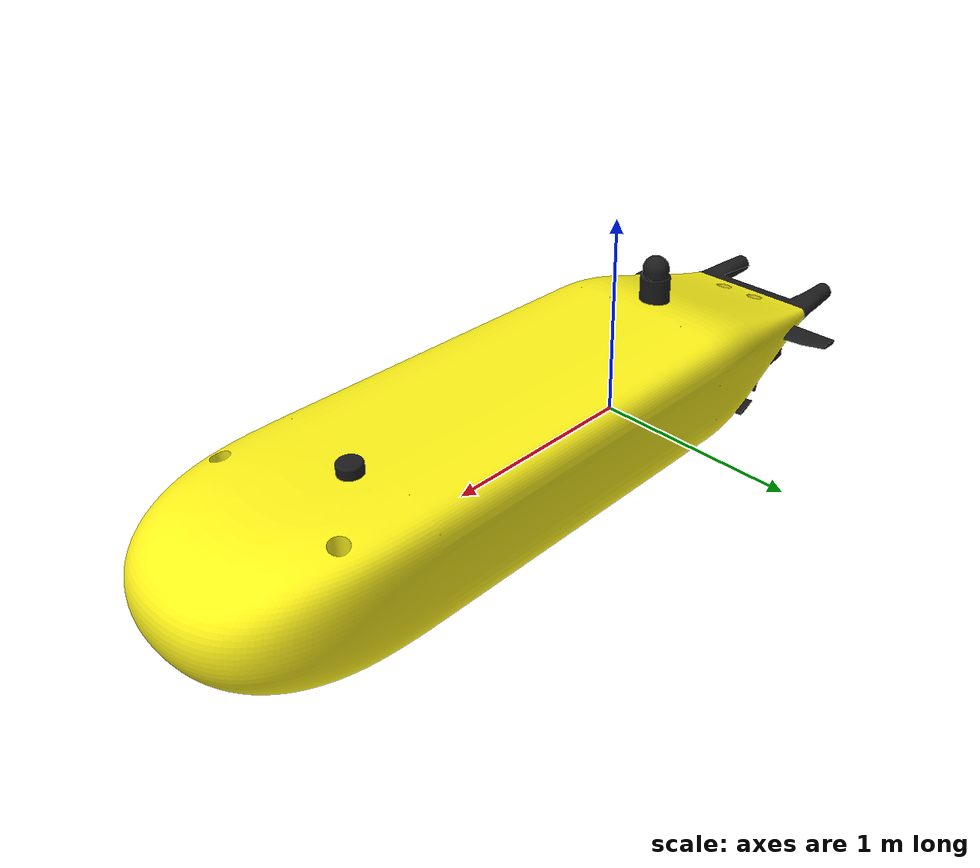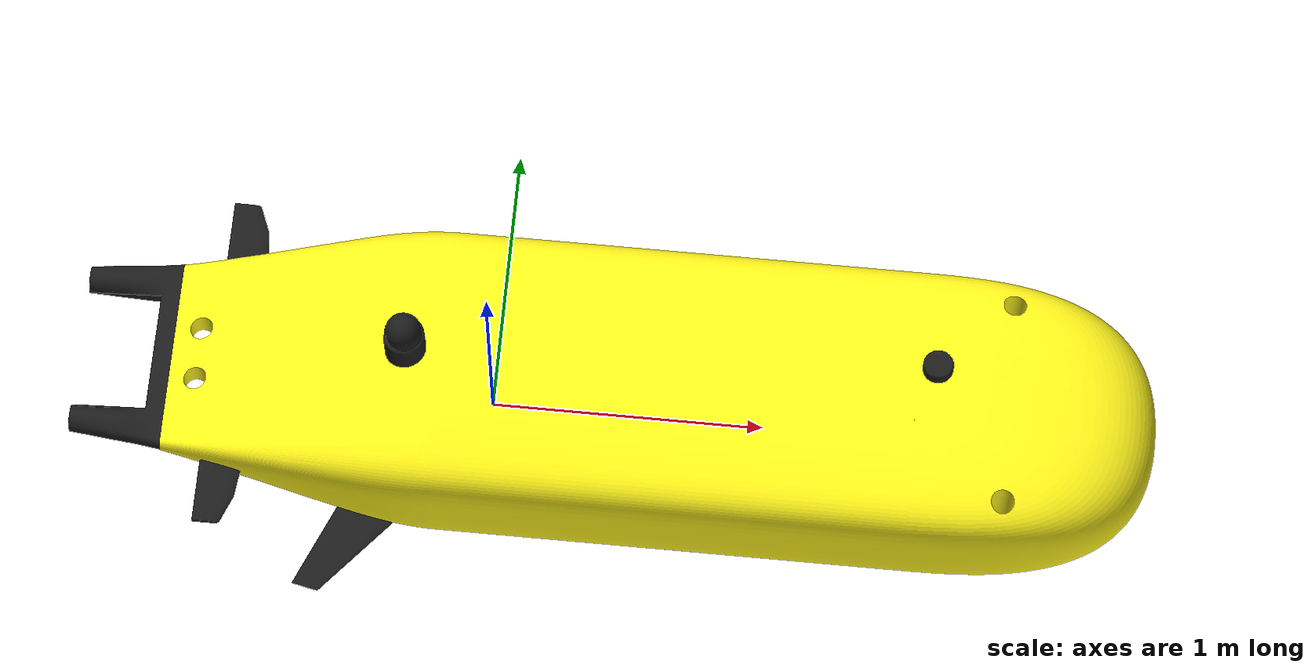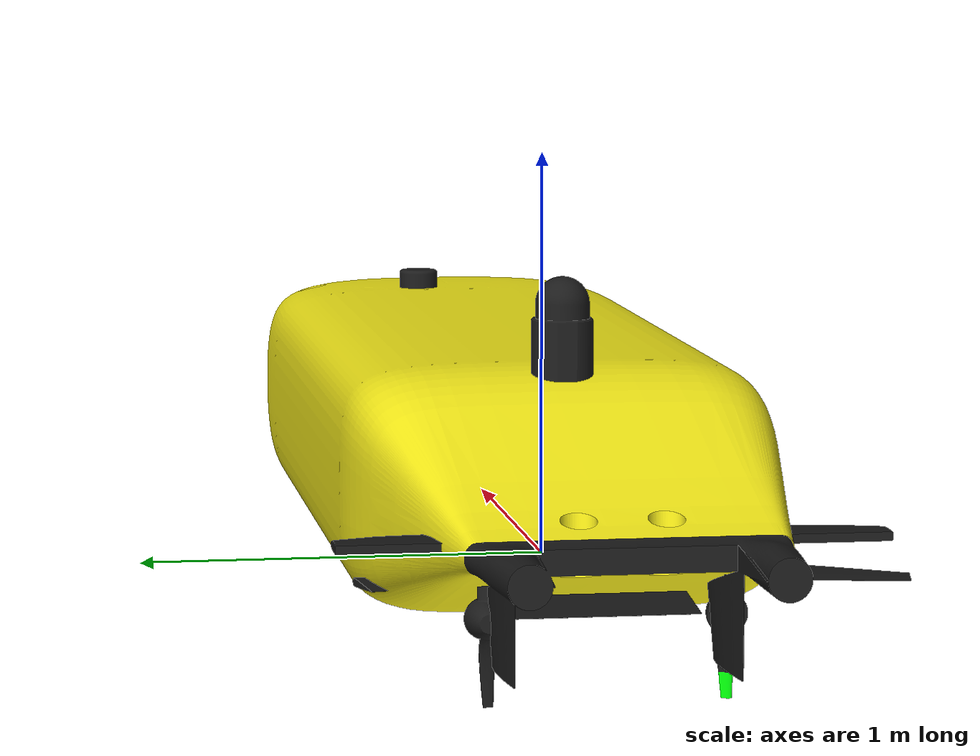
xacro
<?xml version="1.0"?>
<robot name="lolo_auv" xmlns:xacro="http://www.ros.org/wiki/xacro">

  <!-- Define the robot_namespace argument with a default value -->
  <xacro:arg name="robot_namespace" default="lolo"/>
  <xacro:property name="visual_mesh_file" value="file://$(find lolo_description)/mesh/lolo_hull.dae"/>
  <xacro:property name="prop_port_mesh_file" value="file://$(find lolo_description)/mesh/lolo_port_propeller.dae"/>
  <xacro:property name="prop_strb_mesh_file" value="file://$(find lolo_description)/mesh/lolo_strb_propeller.dae"/>
  <xacro:property name="rudder_mesh_file" value="file://$(find lolo_description)/mesh/lolo_rudder.dae"/>
  <xacro:property name="elevon_port_mesh_file" value="file://$(find lolo_description)/mesh/lolo_port_elevon.dae"/>
  <xacro:property name="elevon_strb_mesh_file" value="file://$(find lolo_description)/mesh/lolo_strb_elevon.dae"/>
  <xacro:property name="elevator_mesh_file" value="file://$(find lolo_description)/mesh/lolo_elevator.dae"/>

  <link name="$(arg robot_namespace)/base_link">
    <visual>
      <origin xyz="0 0 0" rpy="0 0 0"/>
      <geometry>
        <mesh filename="${visual_mesh_file}" scale="1 1 1" />
      </geometry>
    </visual>
  </link>

  <link name="$(arg robot_namespace)/dvl_link"/>
  <link name="$(arg robot_namespace)/compass_link"/>
  <link name="$(arg robot_namespace)/fls_link"/>
  <link name="$(arg robot_namespace)/imu_link"/>
  <link name="$(arg robot_namespace)/pressure_link"/>
  <link name="$(arg robot_namespace)/gps_link"/>
  <link name="$(arg robot_namespace)/mbes_link"/>
  <link name="$(arg robot_namespace)/enu/mbes_link"/>
  <link name="$(arg robot_namespace)/usbl_link"/>
  <link name="$(arg robot_namespace)/modem_link"/>

  <link name="$(arg robot_namespace)/elevator">
    <visual>
      <origin xyz="0 0 0" rpy="0 0 0" />
      <geometry>
        <mesh filename="${elevator_mesh_file}" scale="1 1 1"/>
      </geometry>
    </visual>
  </link>

  <link name="$(arg robot_namespace)/rudder_stbd">
    <visual>
      <origin xyz="0 0 0" rpy="0 0 0" />
      <geometry>
        <mesh filename="${rudder_mesh_file}" scale="1 1 1"/>
      </geometry>
    </visual>
  </link>

  <link name="$(arg robot_namespace)/rudder_port">
    <visual>
      <origin xyz="0 0 0" rpy="0 0 0" />
      <geometry>
        <mesh filename="${rudder_mesh_file}" scale="1 1 1"/>
      </geometry>
    </visual>
  </link>

  <link name="$(arg robot_namespace)/elevon_stbd">
    <visual>
      <origin xyz="0 0 0" rpy="0 0 0" />
      <geometry>
        <mesh filename="${elevon_strb_mesh_file}" scale="1 1 1"/>
      </geometry>
    </visual>
  </link>

  <link name="$(arg robot_namespace)/elevon_port">
    <visual>
      <origin xyz="0 0 0" rpy="0 0 0" />
      <geometry>
        <mesh filename="${elevon_port_mesh_file}" scale="1 1 1"/>
      </geometry>
    </visual>
  </link>

  <link name="$(arg robot_namespace)/thruster_port">
    <visual>
      <origin xyz="0.0 0 0" rpy="0 0 0" />
      <geometry>
        <mesh filename="${prop_port_mesh_file}" scale="1 1 1"/>
      </geometry>
    </visual>
  </link>

  <link name="$(arg robot_namespace)/thruster_stbd">
    <visual>
      <origin xyz="0.0 0 0" rpy="0 0 0" />
      <geometry>
        <mesh filename="${prop_strb_mesh_file}" scale="1 1 1"/>
      </geometry>
    </visual>
  </link>

  <!-- Mount a 3D pose sensor -->
  <link name="$(arg robot_namespace)/pose_sensor_link">
    <visual>
      <geometry>
        <box size="0.01 0.01 0.01" />
      </geometry>
    </visual>
  </link>

  <joint name="$(arg robot_namespace)/elevator_joint" type="revolute">
    <origin xyz="-0.6476 0.0 0.0135" rpy="0 0 0" />
    <parent link="$(arg robot_namespace)/base_link" />
    <child link="$(arg robot_namespace)/elevator" />
    <limit effort="0" lower="-${pi/4.0}" upper="${pi/4.0}" velocity="0"/>
    <axis xyz="0 1 0"/>
  </joint>

  <joint name="$(arg robot_namespace)/rudder_stbd_joint" type="revolute">
    <origin xyz="-0.3278 -0.253 0.129" rpy="0 0 0" />
    <parent link="$(arg robot_namespace)/base_link" />
    <child link="$(arg robot_namespace)/rudder_stbd" />
    <limit effort="0" lower="-${pi/4.0}" upper="${pi/4.0}" velocity="0"/>
    <axis xyz="0 0 1"/>
  </joint>

  <joint name="$(arg robot_namespace)/rudder_port_joint" type="revolute">
    <origin xyz="-0.3278 0.253 0.129" rpy="0 0 0" />
    <parent link="$(arg robot_namespace)/base_link" />
    <child link="$(arg robot_namespace)/rudder_port" />
    <limit effort="0" lower="-${pi/4.0}" upper="${pi/4.0}" velocity="0"/>
    <axis xyz="0 0 1"/>
  </joint>

  <joint name="$(arg robot_namespace)/elevon_stbd_joint" type="revolute">
    <origin xyz="-0.3733 -0.4035 0.01349" rpy="0 0 -0.19652" />
    <parent link="$(arg robot_namespace)/base_link" />
    <child link="$(arg robot_namespace)/elevon_stbd" />
    <limit effort="0" lower="-${pi/4.0}" upper="${pi/4.0}" velocity="0"/>
    <axis xyz="0 1 0"/>
  </joint>

  <joint name="$(arg robot_namespace)/elevon_port_joint" type="revolute">
    <origin xyz="-0.3733 0.4035 0.01349" rpy="0 0 0.19652" />
    <parent link="$(arg robot_namespace)/base_link" />
    <child link="$(arg robot_namespace)/elevon_port" />
    <limit effort="0" lower="-${pi/4.0}" upper="${pi/4.0}" velocity="0"/>
    <axis xyz="0 1 0"/>
  </joint>

  <!-- Propeller -->
  <joint name="$(arg robot_namespace)/thruster_stbd_joint" type="continuous">
    <origin xyz="-0.9056 -0.2754 0.013678" rpy="0 0 0" />
    <axis xyz="1 0 0"/>
    <parent link="$(arg robot_namespace)/base_link"/>
    <child link="$(arg robot_namespace)/thruster_stbd"/>
  </joint>

  <joint name="$(arg robot_namespace)/thruster_port_joint" type="continuous">
    <origin xyz="-0.9056 0.2754 0.013678" rpy="0 0 0" />
    <axis xyz="1 0 0"/>
    <parent link="$(arg robot_namespace)/base_link"/>
    <child link="$(arg robot_namespace)/thruster_port"/>
  </joint>

  <joint name="$(arg robot_namespace)/pose_sensor_joint" type="revolute">
    <origin xyz="0 0 0" rpy="0 0 0" />
    <parent link="$(arg robot_namespace)/base_link"/>
    <child link="$(arg robot_namespace)/pose_sensor_link"/>
    <limit effort="0" lower="0" upper="0" velocity="0"/>
  </joint>

  <joint name="$(arg robot_namespace)/dvl_joint" type="fixed">
    <origin xyz="0.805 -0.025 -0.245" rpy="3.14159 0 0" />
    <parent link="$(arg robot_namespace)/base_link"/>
    <child link="$(arg robot_namespace)/dvl_link"/>
  </joint>

  <joint name="$(arg robot_namespace)/compass_joint" type="fixed">
    <origin xyz="0 0 0" rpy="0 0 0" />
    <parent link="$(arg robot_namespace)/base_link"/>
    <child link="$(arg robot_namespace)/compass_link"/>
  </joint>

  <joint name="$(arg robot_namespace)/fls_joint" type="fixed">
    <origin xyz="0 0 0" rpy="0 0 0" />
    <parent link="$(arg robot_namespace)/base_link"/>
    <child link="$(arg robot_namespace)/fls_link"/>
  </joint>

  <joint name="$(arg robot_namespace)/imu_joint" type="fixed">
    <origin xyz="0 0 0" rpy="3.14159 0 0" />
    <parent link="$(arg robot_namespace)/base_link"/>
    <child link="$(arg robot_namespace)/imu_link"/>
  </joint>

  <joint name="$(arg robot_namespace)/pressure_joint" type="fixed">
    <origin xyz="0 0 0" rpy="0 0 0" />
    <parent link="$(arg robot_namespace)/base_link"/>
    <child link="$(arg robot_namespace)/pressure_link"/>
  </joint>

  <joint name="$(arg robot_namespace)/gps_joint" type="fixed">
    <origin xyz="0.836 0 0.44" rpy="0 0 0" />
    <parent link="$(arg robot_namespace)/base_link"/>
    <child link="$(arg robot_namespace)/gps_link"/>
  </joint>

  <joint name="$(arg robot_namespace)/mbes_joint" type="fixed">
    <origin xyz="-.751 -0.0155 0.084" rpy="3.14159 1.53589 0" />
    <parent link="$(arg robot_namespace)/base_link"/>
    <child link="$(arg robot_namespace)/mbes_link"/>
  </joint>

  <joint name="$(arg robot_namespace)/enu/mbes_joint" type="fixed">
    <origin xyz="2.523 0.0155 -0.302" rpy="0 0 0" />
    <parent link="$(arg robot_namespace)/base_link"/>
    <child link="$(arg robot_namespace)/enu/mbes_link"/>
  </joint>

  <joint name="$(arg robot_namespace)/usbl_joint" type="fixed">
    <origin xyz="1.6103 0.0966 0.4802" rpy="0 0 0" />
    <parent link="$(arg robot_namespace)/base_link"/>
    <child link="$(arg robot_namespace)/usbl_link"/>
  </joint>

  <!-- Succorfish modem: measured 0.21 m ahead, 0.095 m right, 0.25 m up from usbl_link -->
  <joint name="$(arg robot_namespace)/modem_joint" type="fixed">
    <origin xyz="1.8203 0.0016 0.7302" rpy="0 0 0" />
    <parent link="$(arg robot_namespace)/base_link"/>
    <child link="$(arg robot_namespace)/modem_link"/>
  </joint>

</robot>
